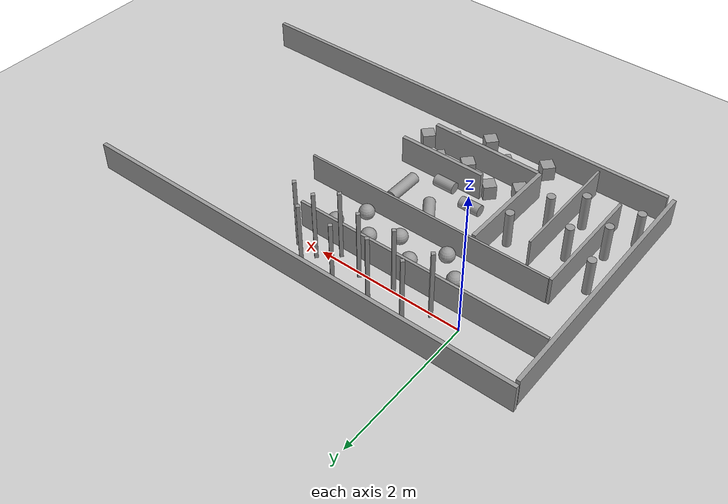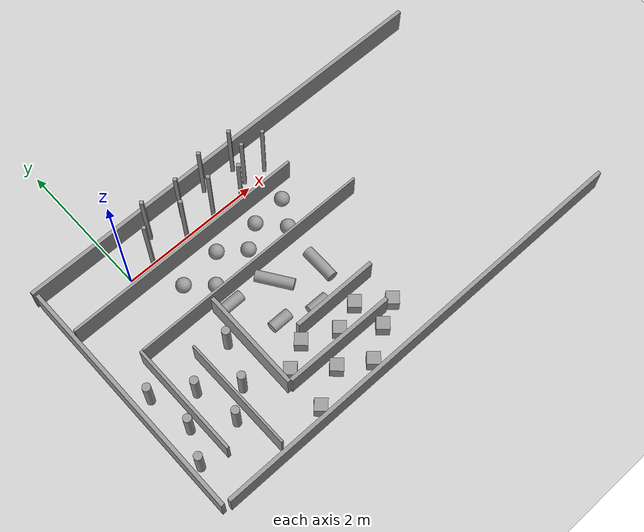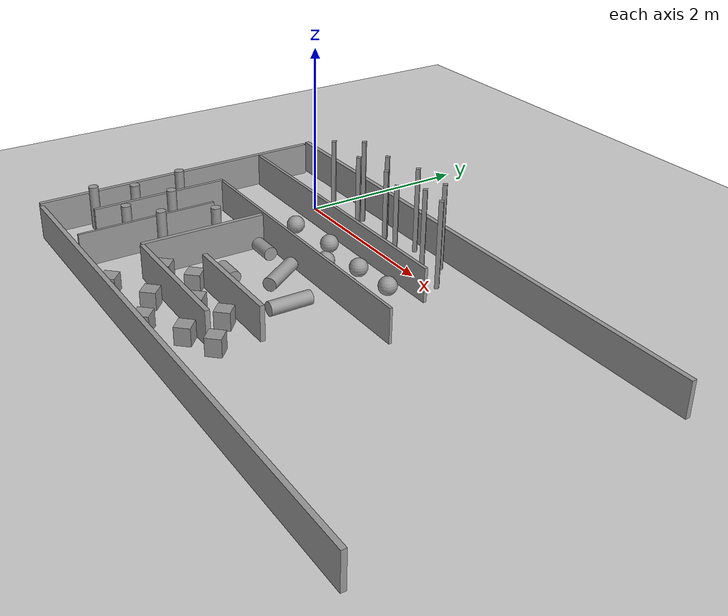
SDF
<sdf version="1.7">
 <world name="default">
  <model name="ground_plane">
   <static>1</static>
   <link name="link">
    <collision name="collision">
     <geometry><plane><normal>0 0 1</normal><size>100 100</size></plane></geometry>
     <surface>
      <contact><collide_bitmask>65535</collide_bitmask></contact>
      <friction><ode><mu>100</mu><mu2>50</mu2></ode></friction>
     </surface>
    </collision>
    <visual name="visual">
     <cast_shadows>0</cast_shadows>
     <geometry><plane><normal>0 0 1</normal><size>100 100</size></plane></geometry>
     <material>
      <script><uri>file://media/materials/scripts/gazebo.material</uri><name>Gazebo/Grey</name></script>
     </material>
    </visual>
   </link>
  </model>
  <model name="unit_box">
   <pose>2.08568 0.530291 0.193139 0.002818 0.00144 0.000198</pose>
   <link name="link">
    <inertial>
     <mass>1</mass>
     <inertia>
      <ixx>0.166667</ixx>
      <ixy>0</ixy>
      <ixz>0</ixz>
      <iyy>0.166667</iyy>
      <iyz>0</iyz>
      <izz>0.166667</izz>
     </inertia>
    </inertial>
    <collision name="collision"><geometry><box><size>6.34126 0.053487 0.395256</size></box></geometry></collision>
    <visual name="visual">
     <geometry><box><size>6.34126 0.053487 0.395256</size></box></geometry>
     <material>
      <script><name>Gazebo/Grey</name><uri>file://media/materials/scripts/gazebo.material</uri></script>
     </material>
    </visual>
   </link>
  </model>
  <model name="unit_box_clone">
   <pose>2.21448 -3.04552 0.191305 0.00143 0.002007 -0.000165</pose>
   <link name="link">
    <inertial>
     <mass>1</mass>
     <inertia>
      <ixx>0.166667</ixx>
      <ixy>0</ixy>
      <ixz>0</ixz>
      <iyy>0.166667</iyy>
      <iyz>0</iyz>
      <izz>0.166667</izz>
     </inertia>
    </inertial>
    <collision name="collision"><geometry><box><size>6.34126 0.053487 0.395257</size></box></geometry></collision>
    <visual name="visual">
     <geometry><box><size>6.34126 0.053487 0.395257</size></box></geometry>
     <material>
      <script><name>Gazebo/Grey</name><uri>file://media/materials/scripts/gazebo.material</uri></script>
     </material>
    </visual>
   </link>
  </model>
  <model name="unit_box_clone_0">
   <pose>-1.04258 -1.28909 0.197473 0.00021 9.2e-05 -1.57068</pose>
   <link name="link">
    <inertial>
     <mass>1</mass>
     <inertia>
      <ixx>0.166667</ixx>
      <ixy>0</ixy>
      <ixz>0</ixz>
      <iyy>0.166667</iyy>
      <iyz>0</iyz>
      <izz>0.166667</izz>
     </inertia>
    </inertial>
    <collision name="collision"><geometry><box><size>3.50364 0.053487 0.395257</size></box></geometry></collision>
    <visual name="visual">
     <geometry><box><size>3.50364 0.053487 0.395257</size></box></geometry>
     <material>
      <script><name>Gazebo/Grey</name><uri>file://media/materials/scripts/gazebo.material</uri></script>
     </material>
    </visual>
   </link>
  </model>
  <model name="unit_box_clone_0_clone_clone_2">
   <pose>0.75471 -0.216927 0.197498 0.000136 7.6e-05 -3.14158</pose>
   <link name="link">
    <inertial>
     <mass>1</mass>
     <inertia>
      <ixx>0.166667</ixx>
      <ixy>0</ixy>
      <ixz>0</ixz>
      <iyy>0.166667</iyy>
      <iyz>0</iyz>
      <izz>0.166667</izz>
     </inertia>
    </inertial>
    <collision name="collision">
     <geometry><box><size>3.50364 0.0374877 0.395257</size></box></geometry>
    </collision>
    <visual name="visual">
     <geometry><box><size>3.50364 0.0374877 0.395257</size></box></geometry>
     <material>
      <script><name>Gazebo/Grey</name><uri>file://media/materials/scripts/gazebo.material</uri></script>
     </material>
    </visual>
   </link>
  </model>
  <model name="unit_box_clone_0_clone_clone_clone_1">
   <pose>-0.561989 -1.76641 0.197612 0 -2e-05 -1.57222</pose>
   <link name="link">
    <inertial>
     <mass>1</mass>
     <inertia>
      <ixx>0.166667</ixx>
      <ixy>0</ixy>
      <ixz>0</ixz>
      <iyy>0.166667</iyy>
      <iyz>0</iyz>
      <izz>0.166667</izz>
     </inertia>
    </inertial>
    <collision name="collision">
     <geometry><box><size>1.61173 0.0400308 0.395257</size></box></geometry>
    </collision>
    <visual name="visual">
     <geometry><box><size>1.61173 0.0400308 0.395257</size></box></geometry>
     <material>
      <script><name>Gazebo/Grey</name><uri>file://media/materials/scripts/gazebo.material</uri></script>
     </material>
    </visual>
   </link>
  </model>
  <model name="unit_box_clone_0_clone_clone_2_clone_0">
   <pose>1.31791 -2.45785 0.197614 -1e-06 -1.8e-05 3.13434</pose>
   <link name="link">
    <inertial>
     <mass>1</mass>
     <inertia>
      <ixx>0.166667</ixx>
      <ixy>0</ixy>
      <ixz>0</ixz>
      <iyy>0.166667</iyy>
      <iyz>0</iyz>
      <izz>0.166667</izz>
     </inertia>
    </inertial>
    <collision name="collision"><geometry><box><size>1.57414 0.053487 0.395257</size></box></geometry></collision>
    <visual name="visual">
     <geometry><box><size>1.57414 0.053487 0.395257</size></box></geometry>
     <material>
      <script><name>Gazebo/Grey</name><uri>file://media/materials/scripts/gazebo.material</uri></script>
     </material>
    </visual>
   </link>
  </model>
  <model name="unit_box_clone_0_clone_clone_2_clone_1">
   <pose>1.21627 -0.969887 0.197105 9e-05 0.0003 3.14155</pose>
   <link name="link">
    <inertial>
     <mass>1</mass>
     <inertia>
      <ixx>0.166667</ixx>
      <ixy>0</ixy>
      <ixz>0</ixz>
      <iyy>0.166667</iyy>
      <iyz>0</iyz>
      <izz>0.166667</izz>
     </inertia>
    </inertial>
    <collision name="collision">
     <geometry><box><size>3.50364 0.0305089 0.395257</size></box></geometry>
    </collision>
    <visual name="visual">
     <geometry><box><size>3.50364 0.0305089 0.395257</size></box></geometry>
     <material>
      <script><name>Gazebo/Grey</name><uri>file://media/materials/scripts/gazebo.material</uri></script>
     </material>
    </visual>
   </link>
  </model>
  <model name="unit_box_clone_0_clone_clone_clone_1_clone_1">
   <pose>-0.049894 -2.14178 0.197612 0 2e-05 -1.57115</pose>
   <link name="link">
    <inertial>
     <mass>1</mass>
     <inertia>
      <ixx>0.166667</ixx>
      <ixy>0</ixy>
      <ixz>0</ixz>
      <iyy>0.166667</iyy>
      <iyz>0</iyz>
      <izz>0.166667</izz>
     </inertia>
    </inertial>
    <collision name="collision">
     <geometry><box><size>1.61173 0.0303199 0.395257</size></box></geometry>
    </collision>
    <visual name="visual">
     <geometry><box><size>1.61173 0.0303199 0.395257</size></box></geometry>
     <material>
      <script><name>Gazebo/Grey</name><uri>file://media/materials/scripts/gazebo.material</uri></script>
     </material>
    </visual>
   </link>
  </model>
  <model name="unit_box_clone_0_clone_clone_clone_1_clone_4">
   <pose>0.514522 -1.73573 0.19762 0 -1.3e-05 -1.58624</pose>
   <link name="link">
    <inertial>
     <mass>1</mass>
     <inertia>
      <ixx>0.166667</ixx>
      <ixy>0</ixy>
      <ixz>0</ixz>
      <iyy>0.166667</iyy>
      <iyz>0</iyz>
      <izz>0.166667</izz>
     </inertia>
    </inertial>
    <collision name="collision"><geometry><box><size>1.43724 0.053487 0.395257</size></box></geometry></collision>
    <visual name="visual">
     <geometry><box><size>1.43724 0.053487 0.395257</size></box></geometry>
     <material>
      <script><name>Gazebo/Grey</name><uri>file://media/materials/scripts/gazebo.material</uri></script>
     </material>
    </visual>
   </link>
  </model>
  <model name="unit_box_clone_0_clone_clone_2_clone_0_clone_0">
   <pose>1.67874 -1.98332 0.197624 -0 -8e-06 -3.1407</pose>
   <link name="link">
    <inertial>
     <mass>1</mass>
     <inertia>
      <ixx>0.166667</ixx>
      <ixy>0</ixy>
      <ixz>0</ixz>
      <iyy>0.166667</iyy>
      <iyz>0</iyz>
      <izz>0.166667</izz>
     </inertia>
    </inertial>
    <collision name="collision"><geometry><box><size>1.23261 0.053487 0.395257</size></box></geometry></collision>
    <visual name="visual">
     <geometry><box><size>1.23261 0.053487 0.395257</size></box></geometry>
     <material>
      <script><name>Gazebo/Grey</name><uri>file://media/materials/scripts/gazebo.material</uri></script>
     </material>
    </visual>
   </link>
  </model>
  <model name="unit_box_2_clone_0">
   <pose>0.376658 0.020895 0.5 1e-06 2e-06 -0.765532</pose>
   <link name="link">
    <inertial>
     <mass>1</mass>
     <inertia>
      <ixx>0.166667</ixx>
      <ixy>0</ixy>
      <ixz>0</ixz>
      <iyy>0.166667</iyy>
      <iyz>0</iyz>
      <izz>0.166667</izz>
     </inertia>
    </inertial>
    <collision name="collision"><geometry><box><size>0.0488997 0.0476357 1</size></box></geometry></collision>
    <visual name="visual">
     <geometry><box><size>0.0488997 0.0476357 1</size></box></geometry>
     <material>
      <script><name>Gazebo/Grey</name><uri>file://media/materials/scripts/gazebo.material</uri></script>
     </material>
    </visual>
   </link>
  </model>
  <model name="unit_sphere_clone_2">
   <pose>0.433808 -0.529917 0.103079 0 -0 0</pose>
   <link name="link">
    <inertial>
     <mass>1</mass>
     <inertia><ixx>0.1</ixx><ixy>0</ixy><ixz>0</ixz><iyy>0.1</iyy><iyz>0</iyz><izz>0.1</izz></inertia>
    </inertial>
    <collision name="collision"><geometry><sphere><radius>0.103079</radius></sphere></geometry></collision>
    <visual name="visual">
     <geometry><sphere><radius>0.103079</radius></sphere></geometry>
     <material>
      <script><name>Gazebo/Grey</name><uri>file://media/materials/scripts/gazebo.material</uri></script>
     </material>
    </visual>
   </link>
  </model>
  <model name="unit_sphere_clone_2_clone_1">
   <pose>2.17445 -0.449568 0.103079 0 -0 0</pose>
   <link name="link">
    <inertial>
     <mass>1</mass>
     <inertia><ixx>0.1</ixx><ixy>0</ixy><ixz>0</ixz><iyy>0.1</iyy><iyz>0</iyz><izz>0.1</izz></inertia>
    </inertial>
    <collision name="collision"><geometry><sphere><radius>0.103079</radius></sphere></geometry></collision>
    <visual name="visual">
     <geometry><sphere><radius>0.103079</radius></sphere></geometry>
     <material>
      <script><name>Gazebo/Grey</name><uri>file://media/materials/scripts/gazebo.material</uri></script>
     </material>
    </visual>
   </link>
  </model>
  <model name="unit_sphere_clone_2_clone_2">
   <pose>1.96376 -0.802286 0.103079 0 -0 0</pose>
   <link name="link">
    <inertial>
     <mass>1</mass>
     <inertia><ixx>0.1</ixx><ixy>0</ixy><ixz>0</ixz><iyy>0.1</iyy><iyz>0</iyz><izz>0.1</izz></inertia>
    </inertial>
    <collision name="collision"><geometry><sphere><radius>0.103079</radius></sphere></geometry></collision>
    <visual name="visual">
     <geometry><sphere><radius>0.103079</radius></sphere></geometry>
     <material>
      <script><name>Gazebo/Grey</name><uri>file://media/materials/scripts/gazebo.material</uri></script>
     </material>
    </visual>
   </link>
  </model>
  <model name="unit_sphere_clone_2_clone_3">
   <pose>1.37012 -0.706616 0.103079 0 -0 0</pose>
   <link name="link">
    <inertial>
     <mass>1</mass>
     <inertia><ixx>0.1</ixx><ixy>0</ixy><ixz>0</ixz><iyy>0.1</iyy><iyz>0</iyz><izz>0.1</izz></inertia>
    </inertial>
    <collision name="collision"><geometry><sphere><radius>0.103079</radius></sphere></geometry></collision>
    <visual name="visual">
     <geometry><sphere><radius>0.103079</radius></sphere></geometry>
     <material>
      <script><name>Gazebo/Grey</name><uri>file://media/materials/scripts/gazebo.material</uri></script>
     </material>
    </visual>
   </link>
  </model>
  <model name="unit_sphere_clone_2_clone_4">
   <pose>1.68186 -0.484583 0.103079 0 -0 0</pose>
   <link name="link">
    <inertial>
     <mass>1</mass>
     <inertia><ixx>0.1</ixx><ixy>0</ixy><ixz>0</ixz><iyy>0.1</iyy><iyz>0</iyz><izz>0.1</izz></inertia>
    </inertial>
    <collision name="collision"><geometry><sphere><radius>0.103079</radius></sphere></geometry></collision>
    <visual name="visual">
     <geometry><sphere><radius>0.103079</radius></sphere></geometry>
     <material>
      <script><name>Gazebo/Grey</name><uri>file://media/materials/scripts/gazebo.material</uri></script>
     </material>
    </visual>
   </link>
  </model>
  <model name="unit_sphere_clone_2_clone_5">
   <pose>1.04544 -0.45494 0.103079 0 -0 0</pose>
   <link name="link">
    <inertial>
     <mass>1</mass>
     <inertia><ixx>0.1</ixx><ixy>0</ixy><ixz>0</ixz><iyy>0.1</iyy><iyz>0</iyz><izz>0.1</izz></inertia>
    </inertial>
    <collision name="collision"><geometry><sphere><radius>0.103079</radius></sphere></geometry></collision>
    <visual name="visual">
     <geometry><sphere><radius>0.103079</radius></sphere></geometry>
     <material>
      <script><name>Gazebo/Grey</name><uri>file://media/materials/scripts/gazebo.material</uri></script>
     </material>
    </visual>
   </link>
  </model>
  <model name="unit_sphere_clone_2_clone_6">
   <pose>0.739935 -0.804241 0.103079 0 -0 0</pose>
   <link name="link">
    <inertial>
     <mass>1</mass>
     <inertia><ixx>0.1</ixx><ixy>0</ixy><ixz>0</ixz><iyy>0.1</iyy><iyz>0</iyz><izz>0.1</izz></inertia>
    </inertial>
    <collision name="collision"><geometry><sphere><radius>0.103079</radius></sphere></geometry></collision>
    <visual name="visual">
     <geometry><sphere><radius>0.103079</radius></sphere></geometry>
     <material>
      <script><name>Gazebo/Grey</name><uri>file://media/materials/scripts/gazebo.material</uri></script>
     </material>
    </visual>
   </link>
  </model>
  <model name="unit_box_2_clone_0_clone">
   <pose>2.01593 0.35727 0.500001 4.8e-05 -3e-06 -0.766421</pose>
   <link name="link">
    <inertial>
     <mass>1</mass>
     <inertia>
      <ixx>0.166667</ixx>
      <ixy>0</ixy>
      <ixz>0</ixz>
      <iyy>0.166667</iyy>
      <iyz>0</iyz>
      <izz>0.166667</izz>
     </inertia>
    </inertial>
    <collision name="collision"><geometry><box><size>0.0489 0.047636 1</size></box></geometry></collision>
    <visual name="visual">
     <geometry><box><size>0.0489 0.047636 1</size></box></geometry>
     <material>
      <script><name>Gazebo/Grey</name><uri>file://media/materials/scripts/gazebo.material</uri></script>
     </material>
    </visual>
   </link>
  </model>
  <model name="unit_box_2_clone_0_clone_0">
   <pose>1.52949 0.368409 0.500002 1.5e-05 -6.8e-05 -0.76604</pose>
   <link name="link">
    <inertial>
     <mass>1</mass>
     <inertia>
      <ixx>0.166667</ixx>
      <ixy>0</ixy>
      <ixz>0</ixz>
      <iyy>0.166667</iyy>
      <iyz>0</iyz>
      <izz>0.166667</izz>
     </inertia>
    </inertial>
    <collision name="collision"><geometry><box><size>0.0489 0.047636 1</size></box></geometry></collision>
    <visual name="visual">
     <geometry><box><size>0.0489 0.047636 1</size></box></geometry>
     <material>
      <script><name>Gazebo/Grey</name><uri>file://media/materials/scripts/gazebo.material</uri></script>
     </material>
    </visual>
   </link>
  </model>
  <model name="unit_box_2_clone_0_clone_1">
   <pose>1.785 -0.093979 0.5 -4e-06 -1e-06 -0.765354</pose>
   <link name="link">
    <inertial>
     <mass>1</mass>
     <inertia>
      <ixx>0.166667</ixx>
      <ixy>0</ixy>
      <ixz>0</ixz>
      <iyy>0.166667</iyy>
      <iyz>0</iyz>
      <izz>0.166667</izz>
     </inertia>
    </inertial>
    <collision name="collision"><geometry><box><size>0.0489 0.047636 1</size></box></geometry></collision>
    <visual name="visual">
     <geometry><box><size>0.0489 0.047636 1</size></box></geometry>
     <material>
      <script><name>Gazebo/Grey</name><uri>file://media/materials/scripts/gazebo.material</uri></script>
     </material>
    </visual>
   </link>
  </model>
  <model name="unit_box_2_clone_0_clone_2">
   <pose>2.32725 0.071071 0.5 -2e-06 -4e-06 -0.767231</pose>
   <link name="link">
    <inertial>
     <mass>1</mass>
     <inertia>
      <ixx>0.166667</ixx>
      <ixy>0</ixy>
      <ixz>0</ixz>
      <iyy>0.166667</iyy>
      <iyz>0</iyz>
      <izz>0.166667</izz>
     </inertia>
    </inertial>
    <collision name="collision"><geometry><box><size>0.0489 0.047636 1</size></box></geometry></collision>
    <visual name="visual">
     <geometry><box><size>0.0489 0.047636 1</size></box></geometry>
     <material>
      <script><name>Gazebo/Grey</name><uri>file://media/materials/scripts/gazebo.material</uri></script>
     </material>
    </visual>
   </link>
  </model>
  <model name="unit_box_2_clone_0_clone_3">
   <pose>0.926373 -0.003016 0.5 -2e-06 0 -0.767017</pose>
   <link name="link">
    <inertial>
     <mass>1</mass>
     <inertia>
      <ixx>0.166667</ixx>
      <ixy>0</ixy>
      <ixz>0</ixz>
      <iyy>0.166667</iyy>
      <iyz>0</iyz>
      <izz>0.166667</izz>
     </inertia>
    </inertial>
    <collision name="collision"><geometry><box><size>0.0489 0.047636 1</size></box></geometry></collision>
    <visual name="visual">
     <geometry><box><size>0.0489 0.047636 1</size></box></geometry>
     <material>
      <script><name>Gazebo/Grey</name><uri>file://media/materials/scripts/gazebo.material</uri></script>
     </material>
    </visual>
   </link>
  </model>
  <model name="unit_box_2_clone_0_clone_4">
   <pose>2.01093 0.105307 0.5 -1e-05 -8e-06 -0.765735</pose>
   <link name="link">
    <inertial>
     <mass>1</mass>
     <inertia>
      <ixx>0.166667</ixx>
      <ixy>0</ixy>
      <ixz>0</ixz>
      <iyy>0.166667</iyy>
      <iyz>0</iyz>
      <izz>0.166667</izz>
     </inertia>
    </inertial>
    <collision name="collision"><geometry><box><size>0.0489 0.047636 1</size></box></geometry></collision>
    <visual name="visual">
     <geometry><box><size>0.0489 0.047636 1</size></box></geometry>
     <material>
      <script><name>Gazebo/Grey</name><uri>file://media/materials/scripts/gazebo.material</uri></script>
     </material>
    </visual>
   </link>
  </model>
  <model name="unit_box_2_clone_0_clone_5">
   <pose>1.07884 0.280252 0.5 1e-06 -3e-06 -0.765343</pose>
   <link name="link">
    <inertial>
     <mass>1</mass>
     <inertia>
      <ixx>0.166667</ixx>
      <ixy>0</ixy>
      <ixz>0</ixz>
      <iyy>0.166667</iyy>
      <iyz>0</iyz>
      <izz>0.166667</izz>
     </inertia>
    </inertial>
    <collision name="collision"><geometry><box><size>0.0489 0.047636 1</size></box></geometry></collision>
    <visual name="visual">
     <geometry><box><size>0.0489 0.047636 1</size></box></geometry>
     <material>
      <script><name>Gazebo/Grey</name><uri>file://media/materials/scripts/gazebo.material</uri></script>
     </material>
    </visual>
   </link>
  </model>
  <model name="unit_box_2_clone_0_clone_6">
   <pose>1.40332 0.037556 0.500001 -1e-06 -2e-05 -0.766805</pose>
   <link name="link">
    <inertial>
     <mass>1</mass>
     <inertia>
      <ixx>0.166667</ixx>
      <ixy>0</ixy>
      <ixz>0</ixz>
      <iyy>0.166667</iyy>
      <iyz>0</iyz>
      <izz>0.166667</izz>
     </inertia>
    </inertial>
    <collision name="collision"><geometry><box><size>0.0489 0.047636 1</size></box></geometry></collision>
    <visual name="visual">
     <geometry><box><size>0.0489 0.047636 1</size></box></geometry>
     <material>
      <script><name>Gazebo/Grey</name><uri>file://media/materials/scripts/gazebo.material</uri></script>
     </material>
    </visual>
   </link>
  </model>
  <model name="unit_box_2_clone_0_clone_7">
   <pose>0.570801 0.308569 0.5 2e-06 6e-06 -0.766113</pose>
   <link name="link">
    <inertial>
     <mass>1</mass>
     <inertia>
      <ixx>0.166667</ixx>
      <ixy>0</ixy>
      <ixz>0</ixz>
      <iyy>0.166667</iyy>
      <iyz>0</iyz>
      <izz>0.166667</izz>
     </inertia>
    </inertial>
    <collision name="collision"><geometry><box><size>0.0489 0.047636 1</size></box></geometry></collision>
    <visual name="visual">
     <geometry><box><size>0.0489 0.047636 1</size></box></geometry>
     <material>
      <script><name>Gazebo/Grey</name><uri>file://media/materials/scripts/gazebo.material</uri></script>
     </material>
    </visual>
   </link>
  </model>
  <model name="unit_cylinder">
   <pose>0.340744 -1.49297 0.259329 0 -0 0.000534</pose>
   <link name="link">
    <inertial>
     <mass>1</mass>
     <inertia><ixx>0.145833</ixx><ixy>0</ixy><ixz>0</ixz><iyy>0.145833</iyy><iyz>0</iyz><izz>0.125</izz></inertia>
    </inertial>
    <collision name="collision">
     <geometry><cylinder><radius>0.0555864</radius><length>0.518668</length></cylinder></geometry>
    </collision>
    <visual name="visual">
     <geometry><cylinder><radius>0.0555864</radius><length>0.518668</length></cylinder></geometry>
     <material>
      <script><name>Gazebo/Grey</name><uri>file://media/materials/scripts/gazebo.material</uri></script>
     </material>
    </visual>
   </link>
  </model>
  <model name="unit_cylinder_clone">
   <pose>0.108292 -2.04494 0.259329 0 -0 0.00127</pose>
   <link name="link">
    <inertial>
     <mass>1</mass>
     <inertia><ixx>0.145833</ixx><ixy>0</ixy><ixz>0</ixz><iyy>0.145833</iyy><iyz>0</iyz><izz>0.125</izz></inertia>
    </inertial>
    <collision name="collision">
     <geometry><cylinder><radius>0.0555866</radius><length>0.518668</length></cylinder></geometry>
    </collision>
    <visual name="visual">
     <geometry><cylinder><radius>0.0555866</radius><length>0.518668</length></cylinder></geometry>
     <material>
      <script><name>Gazebo/Grey</name><uri>file://media/materials/scripts/gazebo.material</uri></script>
     </material>
    </visual>
   </link>
  </model>
  <model name="unit_cylinder_clone_0">
   <pose>-0.224355 -2.31907 0.259329 0 -0 0.001417</pose>
   <link name="link">
    <inertial>
     <mass>1</mass>
     <inertia><ixx>0.145833</ixx><ixy>0</ixy><ixz>0</ixz><iyy>0.145833</iyy><iyz>0</iyz><izz>0.125</izz></inertia>
    </inertial>
    <collision name="collision">
     <geometry><cylinder><radius>0.0555866</radius><length>0.518668</length></cylinder></geometry>
    </collision>
    <visual name="visual">
     <geometry><cylinder><radius>0.0555866</radius><length>0.518668</length></cylinder></geometry>
     <material>
      <script><name>Gazebo/Grey</name><uri>file://media/materials/scripts/gazebo.material</uri></script>
     </material>
    </visual>
   </link>
  </model>
  <model name="unit_cylinder_clone_1">
   <pose>-0.898649 -2.44344 0.259329 0 -0 0.00046</pose>
   <link name="link">
    <inertial>
     <mass>1</mass>
     <inertia><ixx>0.145833</ixx><ixy>0</ixy><ixz>0</ixz><iyy>0.145833</iyy><iyz>0</iyz><izz>0.125</izz></inertia>
    </inertial>
    <collision name="collision">
     <geometry><cylinder><radius>0.0555866</radius><length>0.518668</length></cylinder></geometry>
    </collision>
    <visual name="visual">
     <geometry><cylinder><radius>0.0555866</radius><length>0.518668</length></cylinder></geometry>
     <material>
      <script><name>Gazebo/Grey</name><uri>file://media/materials/scripts/gazebo.material</uri></script>
     </material>
    </visual>
   </link>
  </model>
  <model name="unit_cylinder_clone_2">
   <pose>-0.815607 -1.40514 0.259329 0 -0 0.001749</pose>
   <link name="link">
    <inertial>
     <mass>1</mass>
     <inertia><ixx>0.145833</ixx><ixy>0</ixy><ixz>0</ixz><iyy>0.145833</iyy><iyz>0</iyz><izz>0.125</izz></inertia>
    </inertial>
    <collision name="collision">
     <geometry><cylinder><radius>0.0555866</radius><length>0.518668</length></cylinder></geometry>
    </collision>
    <visual name="visual">
     <geometry><cylinder><radius>0.0555866</radius><length>0.518668</length></cylinder></geometry>
     <material>
      <script><name>Gazebo/Grey</name><uri>file://media/materials/scripts/gazebo.material</uri></script>
     </material>
    </visual>
   </link>
  </model>
  <model name="unit_cylinder_clone_3">
   <pose>-0.701435 -2.01697 0.259329 0 -0 0.000493</pose>
   <link name="link">
    <inertial>
     <mass>1</mass>
     <inertia><ixx>0.145833</ixx><ixy>0</ixy><ixz>0</ixz><iyy>0.145833</iyy><iyz>0</iyz><izz>0.125</izz></inertia>
    </inertial>
    <collision name="collision">
     <geometry><cylinder><radius>0.0555866</radius><length>0.518668</length></cylinder></geometry>
    </collision>
    <visual name="visual">
     <geometry><cylinder><radius>0.0555866</radius><length>0.518668</length></cylinder></geometry>
     <material>
      <script><name>Gazebo/Grey</name><uri>file://media/materials/scripts/gazebo.material</uri></script>
     </material>
    </visual>
   </link>
  </model>
  <model name="unit_cylinder_clone_4">
   <pose>-0.346794 -1.71643 0.259329 0 -0 0.000649</pose>
   <link name="link">
    <inertial>
     <mass>1</mass>
     <inertia><ixx>0.145833</ixx><ixy>0</ixy><ixz>0</ixz><iyy>0.145833</iyy><iyz>0</iyz><izz>0.125</izz></inertia>
    </inertial>
    <collision name="collision">
     <geometry><cylinder><radius>0.0555866</radius><length>0.518668</length></cylinder></geometry>
    </collision>
    <visual name="visual">
     <geometry><cylinder><radius>0.0555866</radius><length>0.518668</length></cylinder></geometry>
     <material>
      <script><name>Gazebo/Grey</name><uri>file://media/materials/scripts/gazebo.material</uri></script>
     </material>
    </visual>
   </link>
  </model>
  <model name="unit_box_0">
   <pose>0.632123 -2.87479 0.101363 -2e-06 -4e-06 0.821388</pose>
   <link name="link">
    <inertial>
     <mass>1</mass>
     <inertia>
      <ixx>0.166667</ixx>
      <ixy>0</ixy>
      <ixz>0</ixz>
      <iyy>0.166667</iyy>
      <iyz>0</iyz>
      <izz>0.166667</izz>
     </inertia>
    </inertial>
    <collision name="collision">
     <geometry><box><size>0.171909 0.173277 0.202726</size></box></geometry>
    </collision>
    <visual name="visual">
     <geometry><box><size>0.171909 0.173277 0.202726</size></box></geometry>
     <material>
      <script><name>Gazebo/Grey</name><uri>file://media/materials/scripts/gazebo.material</uri></script>
     </material>
    </visual>
   </link>
  </model>
  <model name="unit_box_0_clone">
   <pose>1.50737 -2.87209 0.101362 -1e-06 5e-06 0.821358</pose>
   <link name="link">
    <inertial>
     <mass>1</mass>
     <inertia>
      <ixx>0.166667</ixx>
      <ixy>0</ixy>
      <ixz>0</ixz>
      <iyy>0.166667</iyy>
      <iyz>0</iyz>
      <izz>0.166667</izz>
     </inertia>
    </inertial>
    <collision name="collision">
     <geometry><box><size>0.171909 0.173277 0.202726</size></box></geometry>
    </collision>
    <visual name="visual">
     <geometry><box><size>0.171909 0.173277 0.202726</size></box></geometry>
     <material>
      <script><name>Gazebo/Grey</name><uri>file://media/materials/scripts/gazebo.material</uri></script>
     </material>
    </visual>
   </link>
  </model>
  <model name="unit_box_0_clone_0">
   <pose>2.23693 -2.45505 0.101363 -2e-06 -4e-06 0.821372</pose>
   <link name="link">
    <inertial>
     <mass>1</mass>
     <inertia>
      <ixx>0.166667</ixx>
      <ixy>0</ixy>
      <ixz>0</ixz>
      <iyy>0.166667</iyy>
      <iyz>0</iyz>
      <izz>0.166667</izz>
     </inertia>
    </inertial>
    <collision name="collision">
     <geometry><box><size>0.171909 0.173277 0.202726</size></box></geometry>
    </collision>
    <visual name="visual">
     <geometry><box><size>0.171909 0.173277 0.202726</size></box></geometry>
     <material>
      <script><name>Gazebo/Grey</name><uri>file://media/materials/scripts/gazebo.material</uri></script>
     </material>
    </visual>
   </link>
  </model>
  <model name="unit_box_0_clone_2">
   <pose>1.11785 -2.6299 0.101363 2e-06 4e-06 0.821377</pose>
   <link name="link">
    <inertial>
     <mass>1</mass>
     <inertia>
      <ixx>0.166667</ixx>
      <ixy>0</ixy>
      <ixz>0</ixz>
      <iyy>0.166667</iyy>
      <iyz>0</iyz>
      <izz>0.166667</izz>
     </inertia>
    </inertial>
    <collision name="collision">
     <geometry><box><size>0.171909 0.173277 0.202726</size></box></geometry>
    </collision>
    <visual name="visual">
     <geometry><box><size>0.171909 0.173277 0.202726</size></box></geometry>
     <material>
      <script><name>Gazebo/Grey</name><uri>file://media/materials/scripts/gazebo.material</uri></script>
     </material>
    </visual>
   </link>
  </model>
  <model name="unit_box_0_clone_3">
   <pose>1.91191 -2.62015 0.101363 5e-06 -1e-06 0.821359</pose>
   <link name="link">
    <inertial>
     <mass>1</mass>
     <inertia>
      <ixx>0.166667</ixx>
      <ixy>0</ixy>
      <ixz>0</ixz>
      <iyy>0.166667</iyy>
      <iyz>0</iyz>
      <izz>0.166667</izz>
     </inertia>
    </inertial>
    <collision name="collision">
     <geometry><box><size>0.171909 0.173277 0.202726</size></box></geometry>
    </collision>
    <visual name="visual">
     <geometry><box><size>0.171909 0.173277 0.202726</size></box></geometry>
     <material>
      <script><name>Gazebo/Grey</name><uri>file://media/materials/scripts/gazebo.material</uri></script>
     </material>
    </visual>
   </link>
  </model>
  <model name="unit_box_0_clone_4">
   <pose>0.667405 -2.2836 0.101362 3e-06 5e-06 0.821363</pose>
   <link name="link">
    <inertial>
     <mass>1</mass>
     <inertia>
      <ixx>0.166667</ixx>
      <ixy>0</ixy>
      <ixz>0</ixz>
      <iyy>0.166667</iyy>
      <iyz>0</iyz>
      <izz>0.166667</izz>
     </inertia>
    </inertial>
    <collision name="collision">
     <geometry><box><size>0.171909 0.173277 0.202726</size></box></geometry>
    </collision>
    <visual name="visual">
     <geometry><box><size>0.171909 0.173277 0.202726</size></box></geometry>
     <material>
      <script><name>Gazebo/Grey</name><uri>file://media/materials/scripts/gazebo.material</uri></script>
     </material>
    </visual>
   </link>
  </model>
  <model name="unit_box_0_clone_5">
   <pose>1.01806 -2.09302 0.101363 2e-06 -3e-06 0.82138</pose>
   <link name="link">
    <inertial>
     <mass>1</mass>
     <inertia>
      <ixx>0.166667</ixx>
      <ixy>0</ixy>
      <ixz>0</ixz>
      <iyy>0.166667</iyy>
      <iyz>0</iyz>
      <izz>0.166667</izz>
     </inertia>
    </inertial>
    <collision name="collision">
     <geometry><box><size>0.171909 0.173277 0.202726</size></box></geometry>
    </collision>
    <visual name="visual">
     <geometry><box><size>0.171909 0.173277 0.202726</size></box></geometry>
     <material>
      <script><name>Gazebo/Grey</name><uri>file://media/materials/scripts/gazebo.material</uri></script>
     </material>
    </visual>
   </link>
  </model>
  <model name="unit_box_0_clone_6">
   <pose>1.8537 -2.16957 0.101363 2e-06 -1e-06 0.821397</pose>
   <link name="link">
    <inertial>
     <mass>1</mass>
     <inertia>
      <ixx>0.166667</ixx>
      <ixy>0</ixy>
      <ixz>0</ixz>
      <iyy>0.166667</iyy>
      <iyz>0</iyz>
      <izz>0.166667</izz>
     </inertia>
    </inertial>
    <collision name="collision">
     <geometry><box><size>0.171909 0.173277 0.202726</size></box></geometry>
    </collision>
    <visual name="visual">
     <geometry><box><size>0.171909 0.173277 0.202726</size></box></geometry>
     <material>
      <script><name>Gazebo/Grey</name><uri>file://media/materials/scripts/gazebo.material</uri></script>
     </material>
    </visual>
   </link>
  </model>
  <model name="unit_box_0_clone_7">
   <pose>1.47741 -2.29274 0.101363 -4e-06 1e-06 0.821362</pose>
   <link name="link">
    <inertial>
     <mass>1</mass>
     <inertia>
      <ixx>0.166667</ixx>
      <ixy>0</ixy>
      <ixz>0</ixz>
      <iyy>0.166667</iyy>
      <iyz>0</iyz>
      <izz>0.166667</izz>
     </inertia>
    </inertial>
    <collision name="collision">
     <geometry><box><size>0.171909 0.173277 0.202726</size></box></geometry>
    </collision>
    <visual name="visual">
     <geometry><box><size>0.171909 0.173277 0.202726</size></box></geometry>
     <material>
      <script><name>Gazebo/Grey</name><uri>file://media/materials/scripts/gazebo.material</uri></script>
     </material>
    </visual>
   </link>
  </model>
  <model name="unit_cylinder_0_clone">
   <pose>1.33981 -1.24525 0.078555 -2.15624 1.57079 -3.14159</pose>
   <link name="link">
    <inertial>
     <mass>1</mass>
     <inertia><ixx>0.145833</ixx><ixy>0</ixy><ixz>0</ixz><iyy>0.145833</iyy><iyz>0</iyz><izz>0.125</izz></inertia>
    </inertial>
    <collision name="collision">
     <geometry><cylinder><radius>0.0785548</radius><length>0.516707</length></cylinder></geometry>
    </collision>
    <visual name="visual">
     <geometry><cylinder><radius>0.0785548</radius><length>0.516707</length></cylinder></geometry>
     <material>
      <script><name>Gazebo/Grey</name><uri>file://media/materials/scripts/gazebo.material</uri></script>
     </material>
    </visual>
   </link>
  </model>
  <model name="unit_cylinder_0_clone_0">
   <pose>1.91378 -1.46727 0.078555 1.58631 1.57079 3.14159</pose>
   <link name="link">
    <inertial>
     <mass>1</mass>
     <inertia><ixx>0.145833</ixx><ixy>0</ixy><ixz>0</ixz><iyy>0.145833</iyy><iyz>0</iyz><izz>0.125</izz></inertia>
    </inertial>
    <collision name="collision">
     <geometry><cylinder><radius>0.0785548</radius><length>0.480559</length></cylinder></geometry>
    </collision>
    <visual name="visual">
     <geometry><cylinder><radius>0.0785548</radius><length>0.480559</length></cylinder></geometry>
     <material>
      <script><name>Gazebo/Grey</name><uri>file://media/materials/scripts/gazebo.material</uri></script>
     </material>
    </visual>
   </link>
  </model>
  <model name="unit_cylinder_0_clone_1">
   <pose>0.744317 -1.11504 0.078555 3.14159 1.57079 3.14159</pose>
   <link name="link">
    <inertial>
     <mass>1</mass>
     <inertia><ixx>0.145833</ixx><ixy>0</ixy><ixz>0</ixz><iyy>0.145833</iyy><iyz>0</iyz><izz>0.125</izz></inertia>
    </inertial>
    <collision name="collision">
     <geometry><cylinder><radius>0.0785548</radius><length>0.289117</length></cylinder></geometry>
    </collision>
    <visual name="visual">
     <geometry><cylinder><radius>0.0785548</radius><length>0.289117</length></cylinder></geometry>
     <material>
      <script><name>Gazebo/Grey</name><uri>file://media/materials/scripts/gazebo.material</uri></script>
     </material>
    </visual>
   </link>
  </model>
  <model name="unit_cylinder_0_clone_2">
   <pose>1.02266 -1.70511 0.078555 3.14159 1.57079 3.14159</pose>
   <link name="link">
    <inertial>
     <mass>1</mass>
     <inertia><ixx>0.145833</ixx><ixy>0</ixy><ixz>0</ixz><iyy>0.145833</iyy><iyz>0</iyz><izz>0.125</izz></inertia>
    </inertial>
    <collision name="collision">
     <geometry><cylinder><radius>0.0785548</radius><length>0.289117</length></cylinder></geometry>
    </collision>
    <visual name="visual">
     <geometry><cylinder><radius>0.0785548</radius><length>0.289117</length></cylinder></geometry>
     <material>
      <script><name>Gazebo/Grey</name><uri>file://media/materials/scripts/gazebo.material</uri></script>
     </material>
    </visual>
   </link>
  </model>
  <model name="unit_cylinder_0_clone_3">
   <pose>1.52008 -1.85774 0.078555 3.14159 1.57079 3.14159</pose>
   <link name="link">
    <inertial>
     <mass>1</mass>
     <inertia><ixx>0.145833</ixx><ixy>0</ixy><ixz>0</ixz><iyy>0.145833</iyy><iyz>0</iyz><izz>0.125</izz></inertia>
    </inertial>
    <collision name="collision">
     <geometry><cylinder><radius>0.0785548</radius><length>0.289117</length></cylinder></geometry>
    </collision>
    <visual name="visual">
     <geometry><cylinder><radius>0.0785548</radius><length>0.289117</length></cylinder></geometry>
     <material>
      <script><name>Gazebo/Grey</name><uri>file://media/materials/scripts/gazebo.material</uri></script>
     </material>
    </visual>
   </link>
  </model>
 </world>
</sdf>
